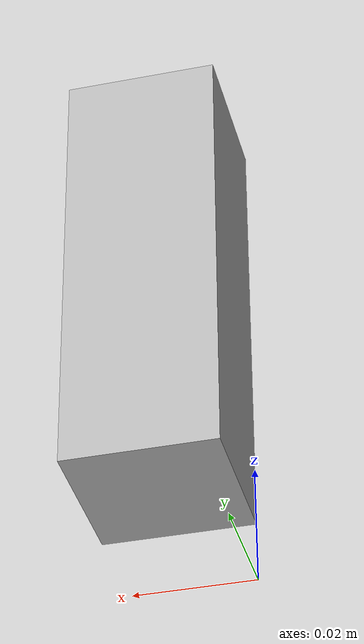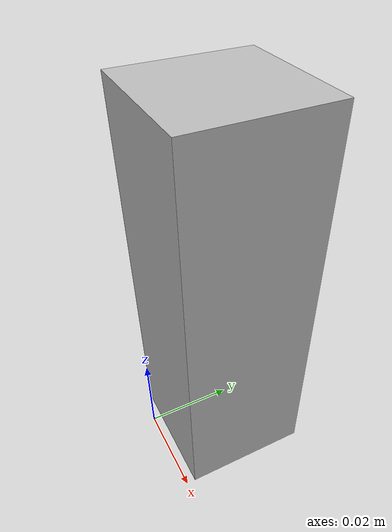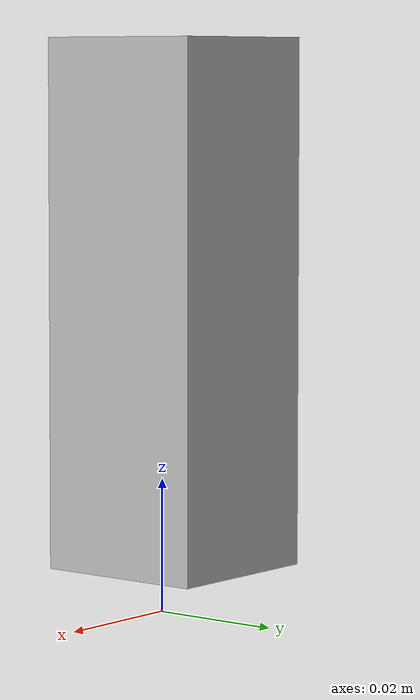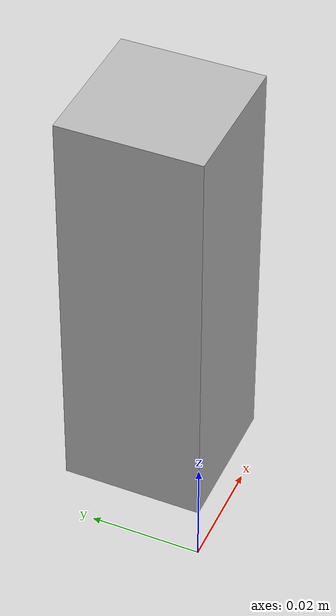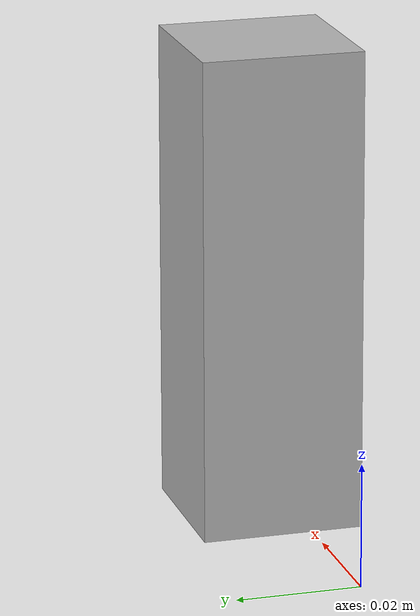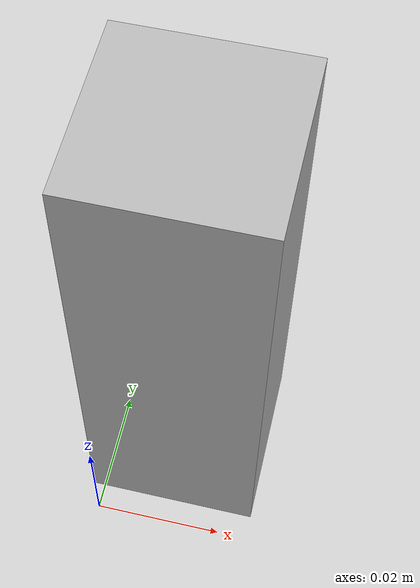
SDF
<sdf version='1.6'>
  <model name='cuboid'>
    <link name='object'>
      <pose frame=''>0 0 0 0 -0 0</pose>
      <inertial>
        <pose frame=''>0.0125 0.0125 0.0375 0 -0 0</pose>
        <mass>0.046875</mass>
        <inertia>
          <ixx>2.44141e-05</ixx>
          <ixy>-1.32349e-22</ixy>
          <ixz>-8.10377e-39</ixz>
          <iyy>2.44141e-05</iyy>
          <iyz>-1.1959e-21</iyz>
          <izz>4.88281e-06</izz>
        </inertia>
      </inertial>
      <collision name='object_collision'>
        <pose frame=''>0 0 0.01 1.5708 -0 0</pose>
        <geometry>
          <mesh>
            <scale>1 1 1</scale>
            <uri>model://cuboid/untitled.dae</uri>
          </mesh>
        </geometry>
        <surface>
          <friction>
            <ode>
              <mu>1.0</mu>
              <mu2>1.0</mu2>
            </ode>
          </friction>
          <contact>
            <ode>
              <kp>1000000.0</kp>
              <kd>1.0</kd>
              <min_depth>0.0000001</min_depth>
              <max_vel>0.1</max_vel>
            </ode>
          </contact>
        </surface>
      </collision>
      <visual name='object_visual'>
        <pose frame=''>0 0 0.01 1.5708 -0 0</pose>
        <geometry>
          <mesh>
            <scale>1 1 1</scale>
            <uri>model://cuboid/untitled.dae</uri>
          </mesh>
        </geometry>
      </visual>
    </link>
  </model>
</sdf>
